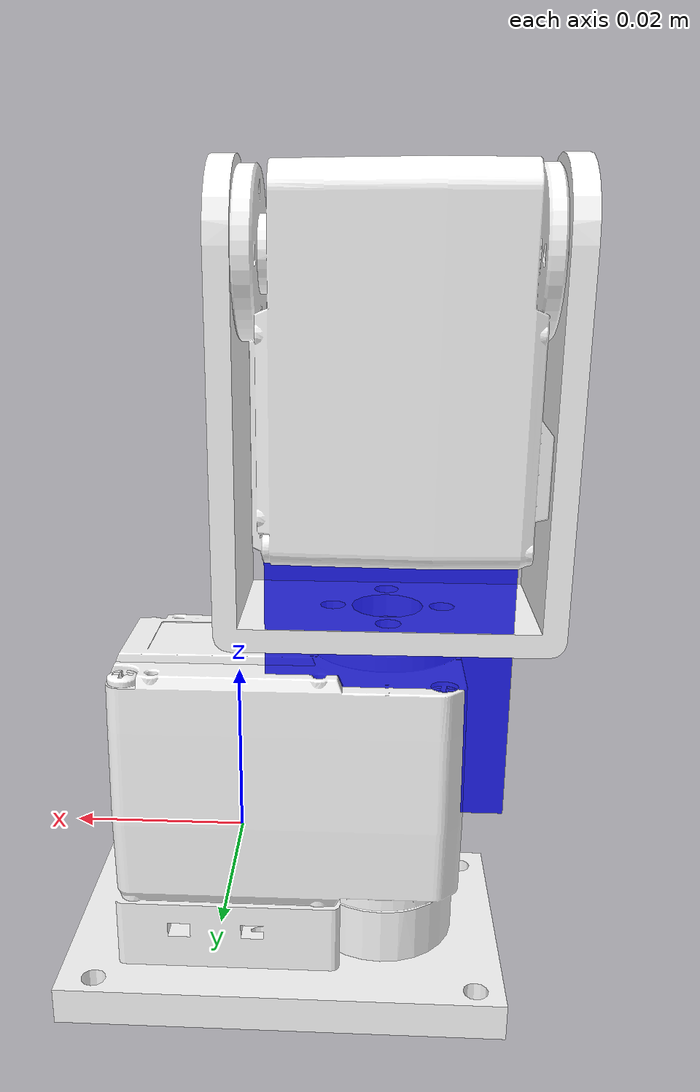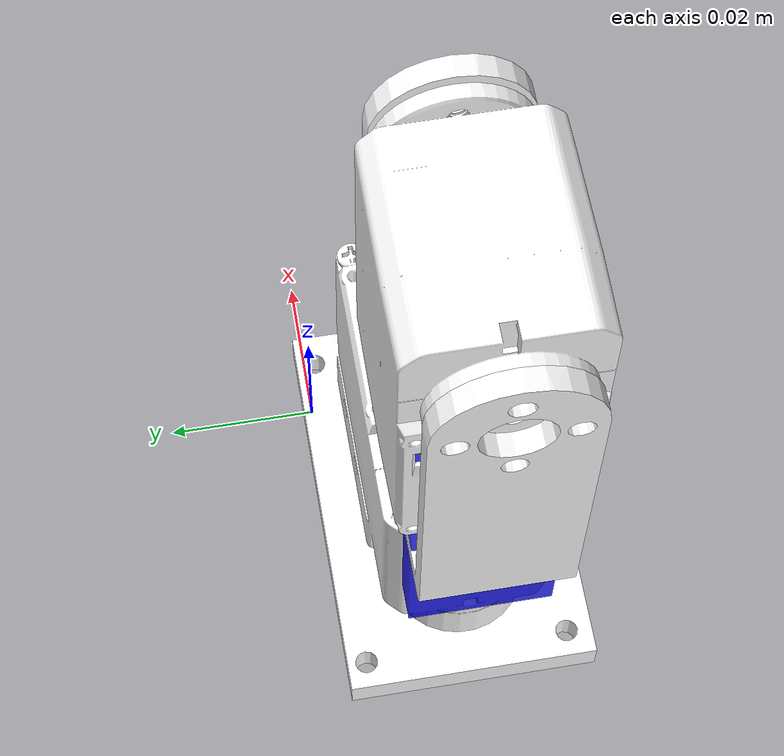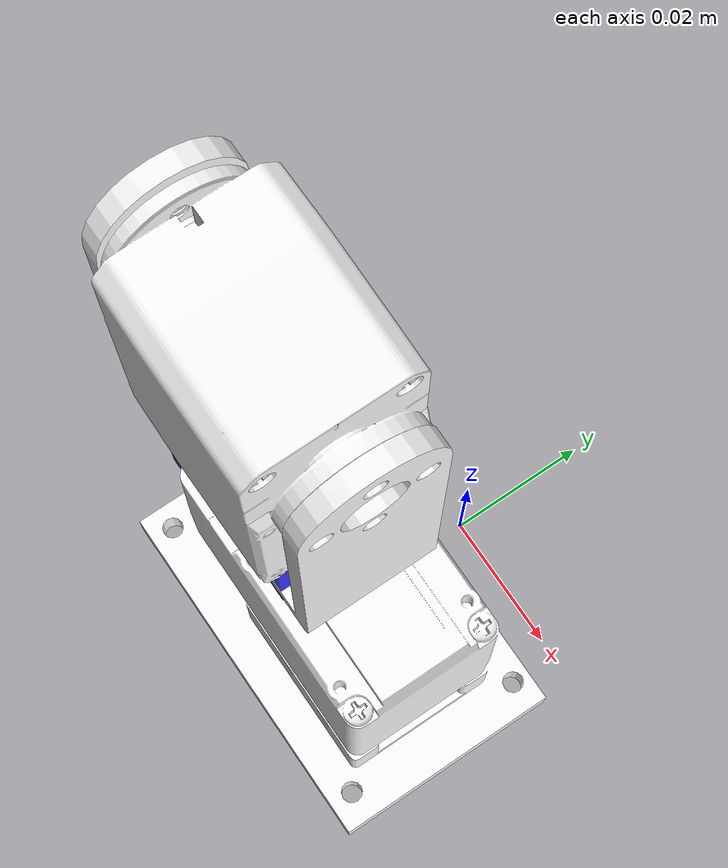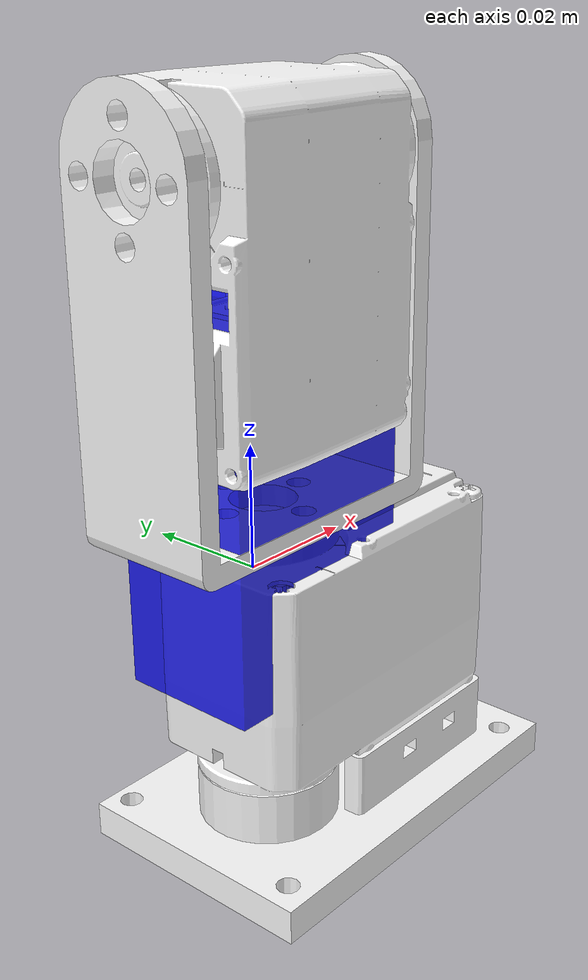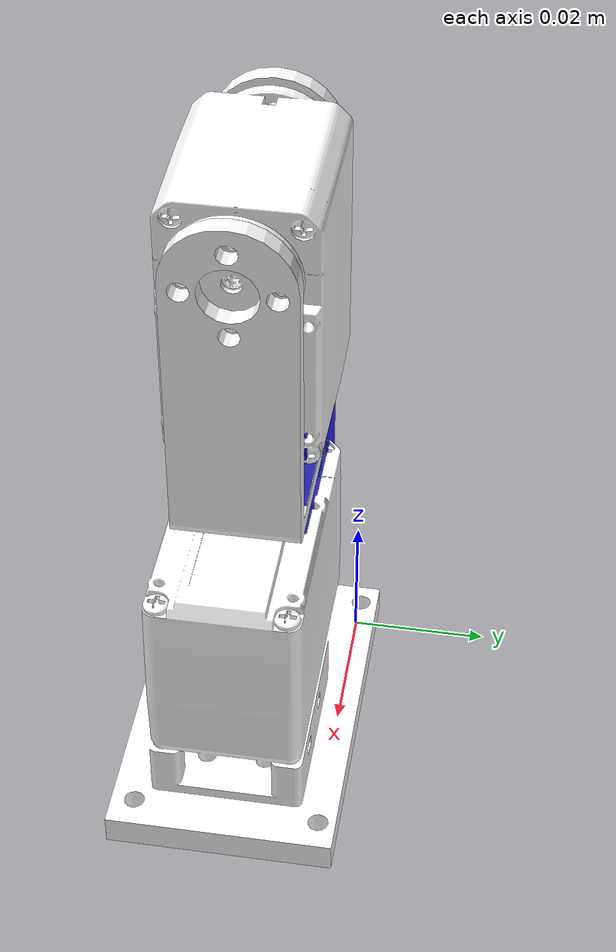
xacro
<?xml version="1.0"?>
<robot xmlns:xacro="http://www.ros.org/wiki/xacro" name="my_robot">
    <!-- Import my_robot urdf file -->
    <xacro:include filename="$(find my_robot_description)/urdf/my_robot.urdf.xacro" />

</robot>

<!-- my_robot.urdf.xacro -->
<robot xmlns:xacro="http://www.ros.org/wiki/xacro" name="my_robot">

  <xacro:include filename="my_robot.urdf"/>
  <xacro:include filename="my_robot_camera.xacro"/>
  <xacro:include filename="my_robot.ros2_control.xacro"/>

  <xacro:my_robot_yuntai_ros2_control
      port="/dev/ttyACM0"
      joint1_motor_id="1"
      joint2_motor_id="2"/>

</robot>

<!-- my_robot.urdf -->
<robot name="my_robot">

  <material name="white">
    <color rgba="1 1 1 1" />
  </material>

  <link name="base_footprint"/>

  <joint name="base_footprint_joint" type="fixed">
    <origin xyz="0 0 0" rpy="0 0 0" />
    <parent link="base_footprint" />
    <child link="base_link" />
  </joint>

  <link name="base_link">
    <inertial>
      <origin xyz="-0.00300451980276256 -0.0100336165918526 0.0181072277782003" rpy="0 0 0" />
      <mass value="0.0328981496900704" />
      <inertia ixx="2.84860896960679E-06" ixy="2.66287549879154E-08" ixz="-5.78756105139677E-09"
               iyy="8.24393549329368E-06" iyz="-1.99684915684532E-10" izz="6.45357713275226E-06" />
    </inertial>
    <visual>
      <origin xyz="0 0 0" rpy="0 0 0" />
      <geometry>
        <mesh filename="package://my_robot_description/meshes/base_link.STL" />
      </geometry>
      <material name="white" />
    </visual>
    <collision>
      <origin xyz="0 0 0" rpy="0 0 0" />
      <geometry>
        <mesh filename="package://my_robot_description/meshes/base_link.STL" />
      </geometry>
    </collision>
  </link>

  <link name="link1">
    <inertial>
      <origin xyz="1.73472347597681E-17 -3.46944695195361E-18 0.0200017378793156" rpy="0 0 0" />
      <mass value="0.00797150054395293" />
      <inertia ixx="2.6031213854509E-06" ixy="6.55928376360409E-22" ixz="-1.78064190672032E-21"
               iyy="4.96462690451124E-06" iyz="-3.95128921271933E-22" izz="2.92724332929689E-06" />
    </inertial>
    <visual>
      <origin xyz="0 0 0" rpy="0 0 0" />
      <geometry>
        <mesh filename="package://my_robot_description/meshes/link1.STL" />
      </geometry>
      <material name="white" />
    </visual>
    <collision>
      <origin xyz="0 0 0" rpy="0 0 0" />
      <geometry>
        <mesh filename="package://my_robot_description/meshes/link1.STL" />
      </geometry>
    </collision>
  </link>

  <joint name="yuntai_joint1" type="revolute">
    <origin xyz="-0.017135 -0.018308 0.018921" rpy="0 0 0" />
    <parent link="base_link" />
    <child link="link1" />
    <axis xyz="0 0 1" />
    <limit lower="-3.14" upper="3.14" effort="2.94" velocity="4.7" />
  </joint>

  <link name="link2">
    <inertial>
      <origin xyz="0.0147933766283957 0.000359851819586466 -0.000341765102755642" rpy="0 0 0" />
      <mass value="0.019578307488806" />
      <inertia ixx="1.31233972746423E-06" ixy="-5.21115848269479E-09" ixz="-5.81597879547027E-09"
               iyy="3.36934206100943E-06" iyz="-3.4473296802718E-10" izz="2.80834051774756E-06" />
    </inertial>
    <visual>
      <origin xyz="0 0 0" rpy="0 0 0" />
      <geometry>
        <mesh filename="package://my_robot_description/meshes/link2.STL" />
      </geometry>
      <material name="white" />
    </visual>
    <collision>
      <origin xyz="0 0 0" rpy="0 0 0" />
      <geometry>
        <mesh filename="package://my_robot_description/meshes/link2.STL" />
      </geometry>
    </collision>
  </link>

  <joint name="yuntai_joint2" type="revolute">
    <origin xyz="0 0 0.046259" rpy="1.5708 1.5708 0" />
    <parent link="link1" />
    <child link="link2" />
    <axis xyz="0 1 0" />
    <limit lower="0" upper="3.14" effort="2.94" velocity="4.7" />
  </joint>

</robot>

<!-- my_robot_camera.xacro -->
<robot xmlns:xacro="http://www.ros.org/wiki/xacro">

  <link name="camera_link">
    <visual>
      <geometry>
        <box size="0.055 0.03 0.02"/>
      </geometry>
      <material name="blue">
        <color rgba="0 0 1 0.8"/>
      </material>
    </visual>
    <collision>
      <geometry>
        <box size="0.055 0.03 0.02"/>
      </geometry>
    </collision>
    <inertial>
      <mass value="0.001"/>
      <inertia ixx="1e-6" ixy="0" ixz="0" iyy="1e-6" iyz="0" izz="1e-6"/>
    </inertial>
  </link>

  <joint name="camera_joint" type="fixed">
    <origin xyz="0.04 0 0" rpy="3.1416 0 0"/>
    <parent link="link2"/>
    <child link="camera_link"/>
  </joint>

  <link name="camera_optical_link"/>

  <joint name="camera_optical_joint" type="fixed">
    <origin xyz="0 0 0" rpy="-1.5708 0 -1.5708"/>
    <parent link="camera_link"/>
    <child link="camera_optical_link"/>
  </joint>

  <gazebo reference="camera_link">
    <sensor name="camera" type="camera">
      <always_on>true</always_on>
      <update_rate>30</update_rate>
      <visualize>true</visualize>
      <topic>/camera/image</topic>
      <camera>
        <horizontal_fov>1.047</horizontal_fov>
        <image>
          <width>640</width>
          <height>480</height>
          <format>R8G8B8</format>
        </image>
        <clip>
          <near>0.05</near>
          <far>10.0</far>
        </clip>
      </camera>
    </sensor>
  </gazebo>

</robot>
